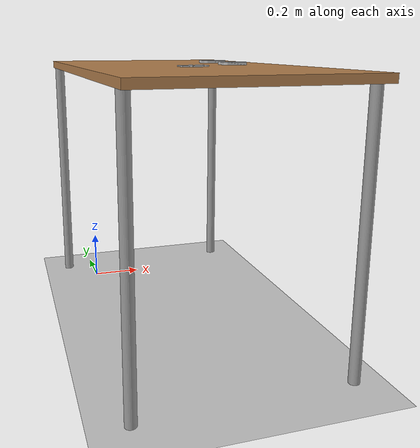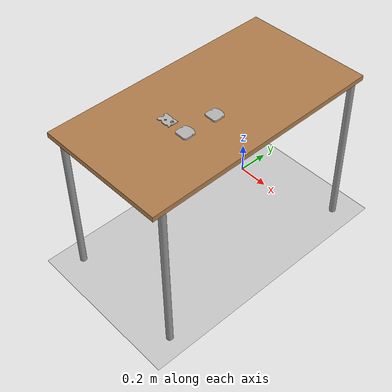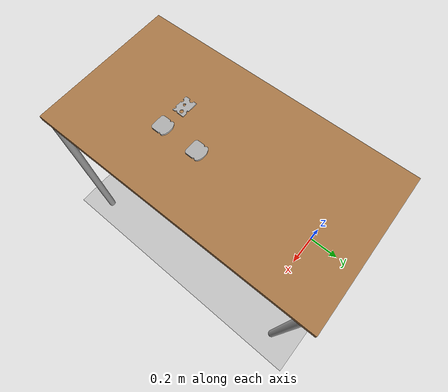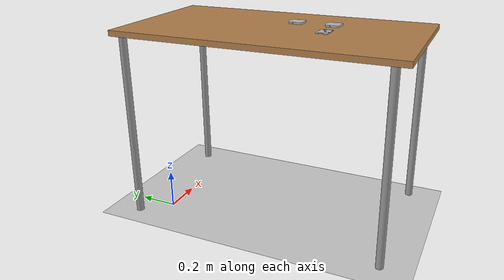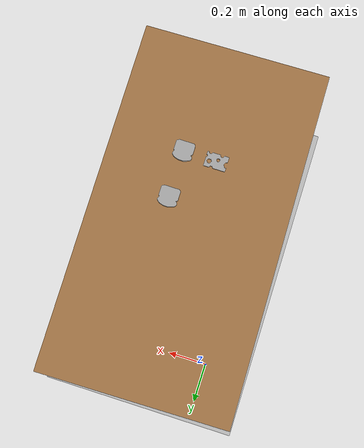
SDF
<sdf version="1.7">
 <world name="default">
  <model name="ground_plane">
   <static>1</static>
   <link name="link">
    <collision name="collision">
     <geometry><plane><normal>0 0 1</normal><size>100 100</size></plane></geometry>
     <surface>
      <contact><collide_bitmask>65535</collide_bitmask></contact>
      <friction><ode><mu>100</mu><mu2>50</mu2></ode></friction>
     </surface>
    </collision>
    <visual name="visual">
     <cast_shadows>0</cast_shadows>
     <geometry><plane><normal>0 0 1</normal><size>100 100</size></plane></geometry>
     <material>
      <script><uri>file://media/materials/scripts/gazebo.material</uri><name>Gazebo/Grey</name></script>
     </material>
    </visual>
   </link>
  </model>
  <light name="sun" type="directional">
   <pose>0 0 10 0 -0 0</pose>
   <diffuse>0.8 0.8 0.8 1</diffuse>
   <specular>0.2 0.2 0.2 1</specular>
   <attenuation>
    <range>1000</range>
    <constant>0.9</constant>
    <linear>0.01</linear>
    <quadratic>0.001</quadratic>
   </attenuation>
   <direction>-0.5 0.1 -0.9</direction>
   <spot><inner_angle>0</inner_angle><outer_angle>0</outer_angle><falloff>0</falloff></spot>
  </light>
  <model name="table">
   <static>1</static>
   <link name="link">
    <collision name="surface">
     <pose>0 0 1 0 -0 0</pose>
     <geometry><box><size>1.5 0.8 0.03</size></box></geometry>
     <surface><friction><ode><mu>0.6</mu><mu2>0.6</mu2></ode></friction></surface>
    </collision>
    <visual name="visual1">
     <pose>0 0 1 0 -0 0</pose>
     <geometry><box><size>1.5 0.8 0.03</size></box></geometry>
     <material>
      <script><uri>file://media/materials/scripts/gazebo.material</uri><name>Gazebo/Wood</name></script>
     </material>
    </visual>
    <collision name="front_left_leg">
     <pose>0.68 0.38 0.5 0 -0 0</pose>
     <geometry><cylinder><radius>0.02</radius><length>1</length></cylinder></geometry>
    </collision>
    <visual name="front_left_leg">
     <pose>0.68 0.38 0.5 0 -0 0</pose>
     <geometry><cylinder><radius>0.02</radius><length>1</length></cylinder></geometry>
     <material>
      <script><uri>file://media/materials/scripts/gazebo.material</uri><name>Gazebo/Grey</name></script>
     </material>
    </visual>
    <collision name="front_right_leg">
     <pose>0.68 -0.38 0.5 0 -0 0</pose>
     <geometry><cylinder><radius>0.02</radius><length>1</length></cylinder></geometry>
    </collision>
    <visual name="front_right_leg">
     <pose>0.68 -0.38 0.5 0 -0 0</pose>
     <geometry><cylinder><radius>0.02</radius><length>1</length></cylinder></geometry>
     <material>
      <script><uri>file://media/materials/scripts/gazebo.material</uri><name>Gazebo/Grey</name></script>
     </material>
    </visual>
    <collision name="back_right_leg">
     <pose>-0.68 -0.38 0.5 0 -0 0</pose>
     <geometry><cylinder><radius>0.02</radius><length>1</length></cylinder></geometry>
    </collision>
    <visual name="back_right_leg">
     <pose>-0.68 -0.38 0.5 0 -0 0</pose>
     <geometry><cylinder><radius>0.02</radius><length>1</length></cylinder></geometry>
     <material>
      <script><uri>file://media/materials/scripts/gazebo.material</uri><name>Gazebo/Grey</name></script>
     </material>
    </visual>
    <collision name="back_left_leg">
     <pose>-0.68 0.38 0.5 0 -0 0</pose>
     <geometry><cylinder><radius>0.02</radius><length>1</length></cylinder></geometry>
    </collision>
    <visual name="back_left_leg">
     <pose>-0.68 0.38 0.5 0 -0 0</pose>
     <geometry><cylinder><radius>0.02</radius><length>1</length></cylinder></geometry>
     <material>
      <script><uri>file://media/materials/scripts/gazebo.material</uri><name>Gazebo/Grey</name></script>
     </material>
    </visual>
   </link>
   <pose>0.27433 -0.535478 0 0 -0 1.58625</pose>
  </model>
  <physics type="ode">
   <max_step_size>0.001</max_step_size>
   <real_time_factor>1</real_time_factor>
   <real_time_update_rate>1000</real_time_update_rate>
  </physics>
  <gravity>0 0 0</gravity>
  <magnetic_field>6e-06 2.3e-05 -4.2e-05</magnetic_field>
  <atmosphere type="adiabatic"/>
  <scene><ambient>0.4 0.4 0.4 1</ambient><background>0.7 0.7 0.7 1</background><shadows>1</shadows></scene>
  <audio><device>default</device></audio>
  <spherical_coordinates>
   <surface_model>EARTH_WGS84</surface_model>
   <latitude_deg>0</latitude_deg>
   <longitude_deg>0</longitude_deg>
   <elevation>0</elevation>
   <heading_deg>0</heading_deg>
  </spherical_coordinates>
  <include><name>sliced_bread_1</name><uri>model://sliced_bread</uri><pose>0.37 -0.6 1.03 0 0 0</pose></include>
  <include><name>sliced_bread_2</name><uri>model://sliced_bread</uri><pose>0.37 -0.8 1.03 0 0 0</pose></include>
  <include><uri>model://sliced_cheese</uri><pose>0.23 -0.8 1.02 1.57 0 0</pose></include>
 </world>
</sdf>

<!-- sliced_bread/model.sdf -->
<sdf version="1.6">

  <model name="sliced_bread">

    <static>false</static>

    <link name="link">

      <visual name="visual">

        <geometry>
          <mesh>
            <uri>model://sliced_bread/meshes/model.obj</uri>
            <scale>0.55 0.55 0.55</scale>
          </mesh>
        </geometry>

      </visual>

      <collision name="collision">

        <geometry>
          <mesh>
            <uri>model://sliced_bread/meshes/model.obj</uri>
            <scale>0.55 0.55 0.55</scale>
          </mesh>
        </geometry>

      </collision>

    </link>

  </model>

</sdf>

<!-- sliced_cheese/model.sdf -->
<sdf version="1.6">

  <model name="sliced_cheese">

    <static>false</static>

    <link name="link">

      <visual name="visual">

        <geometry>
          <mesh>
            <uri>model://sliced_cheese/meshes/cheeseCut.obj</uri>
            <scale>0.24 0.24 0.24</scale>
          </mesh>
        </geometry>

      </visual>

      <collision name="collision">

        <geometry>
          <mesh>
            <uri>model://sliced_cheese/meshes/cheeseCut.obj</uri>
            <scale>0.24 0.24 0.24</scale>
          </mesh>
        </geometry>

      </collision>

    </link>

  </model>

</sdf>
